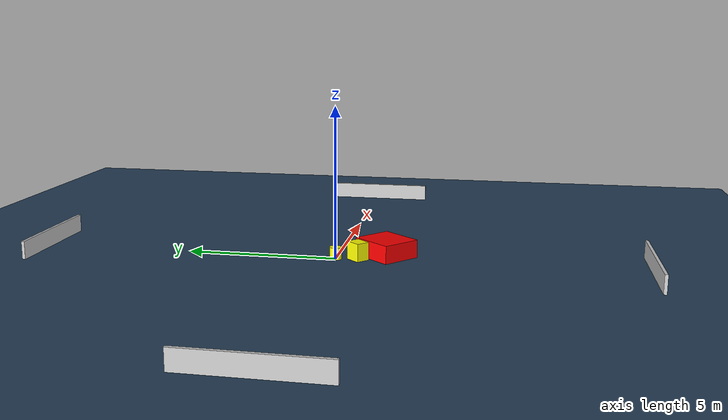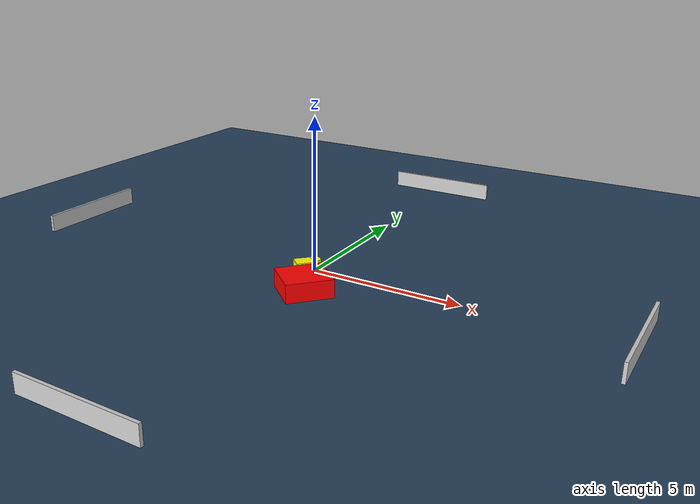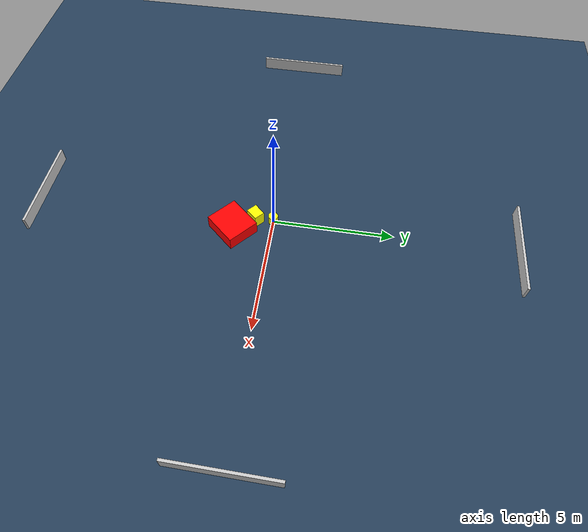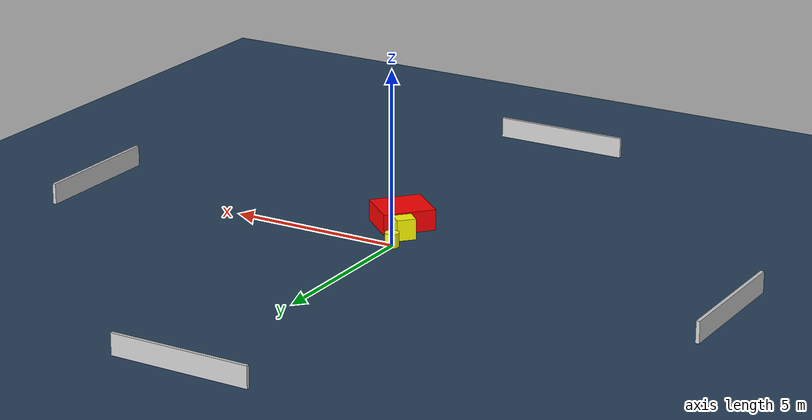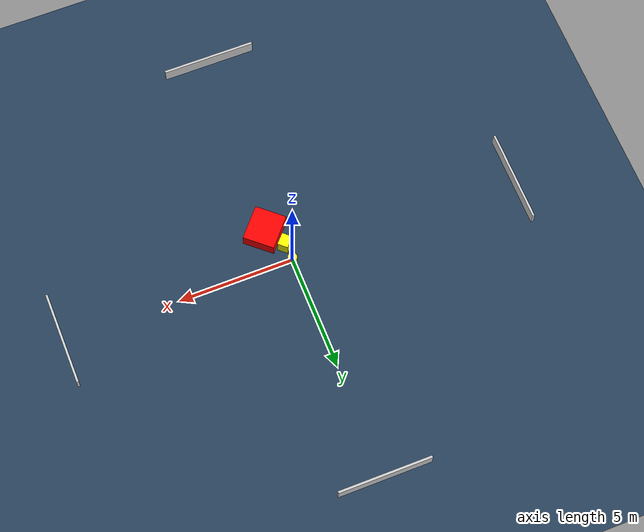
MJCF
<?xml version="1.0" ?>
<mujoco model="generated_environment">
  <option timestep="0.01" integrator="RK4" cone="elliptic"/>
  <default>
    <geom density="1"/>
  </default>
  <asset>
    <texture builtin="gradient" height="3072" name="skybox" rgb1="0.3 0.5 0.7" rgb2="0 0 0" type="skybox" width="512"/>
    <texture builtin="checker" height="300" name="groundplane" rgb1="0.2 0.3 0.4" rgb2="0.1 0.2 0.3" type="2d" width="300"/>
    <material name="groundplane" reflectance="0.2" texrepeat="5 5" texture="groundplane"/>
  </asset>
  <worldbody>
    <light dir="0 0 -1" directional="true" pos="0 0 1.5"/>
    <geom condim="3" friction="0.5 0.005 0.001" material="groundplane" name="floor" pos="0 0 0" size="0 0 0.05" type="plane"/>
    <body name="walls">
      <geom name="wall_1" condim="4" pos="-10.0 0.0 0.3" rgba="0.800000011920929 0.800000011920929 0.800000011920929 1.0" size="0.05 2.0 0.3" type="box"/>
      <geom name="wall_2" condim="4" pos="10.0 0.0 0.3" rgba="0.800000011920929 0.800000011920929 0.800000011920929 1.0" size="0.05 2.0 0.3" type="box"/>
      <geom name="wall_3" condim="4" pos="0.0 -10.0 0.3" rgba="0.800000011920929 0.800000011920929 0.800000011920929 1.0" size="2.0 0.05 0.3" type="box"/>
      <geom name="wall_4" condim="4" pos="0.0 10.0 0.3" rgba="0.800000011920929 0.800000011920929 0.800000011920929 1.0" size="2.0 0.05 0.3" type="box"/>
    </body>
    <body name="robot">
      <joint name="joint_x" type="slide" pos="0 0 0" axis="1 0 0"/>
      <joint name="joint_y" type="slide" pos="0 0 0" axis="0 1 0"/>
      <geom name="robot" type="cylinder" pos="0.0 0.0 0.2" size="0.2 0.2 0.0" mass="5.0" friction="1.0 0.005 0.0001" condim="4" rgba="1.0 1.0 0.0 1.0"/>
    </body>
    <body name="obstacle_1_movable">
      <geom name="obstacle_1_movable" condim="4" pos="0.04788395044526152 -0.732282761231242 0.3" euler="0 0 137.4344927809405" friction="0.0 0.005 0.001" rgba="1.0 1.0 0.0 1.0" size="0.22827523641231964 0.2721033675840243 0.3" type="box" mass="0.1"/>
      <joint type="free"/>
    </body>
    <body name="obstacle_2_static">
      <geom name="obstacle_2_static" condim="4" pos="0.6200358274452692 -1.593835037635339 0.3" euler="0 0 138.7837415244074" friction="0.0 0.005 0.001" rgba="1.0 0.0 0.0 1.0" size="0.6808739480878507 0.7544933403181546 0.3" type="box"/>
    </body>
  </worldbody>
  <actuator>
    <motor name="actuator_x" joint="joint_x" gear="1" ctrlrange="-1 1"/>
    <motor name="actuator_y" joint="joint_y" gear="1" ctrlrange="-1 1"/>
  </actuator>
</mujoco>
